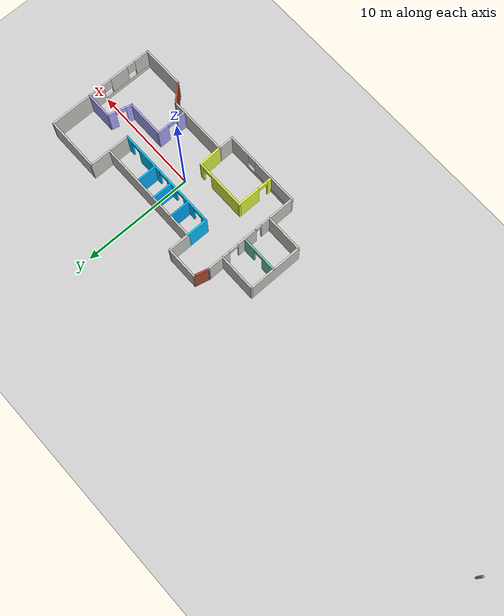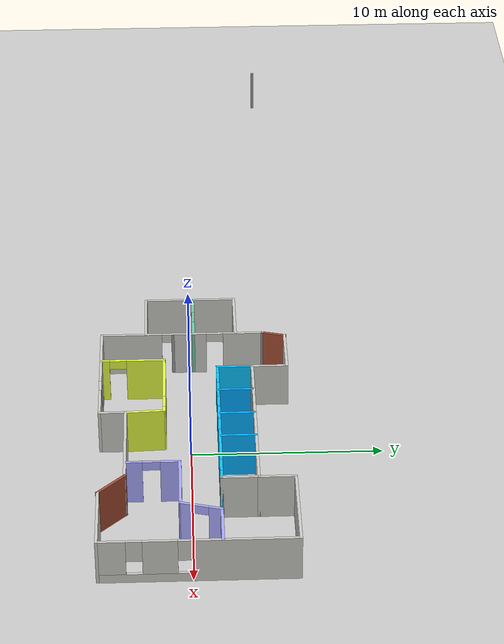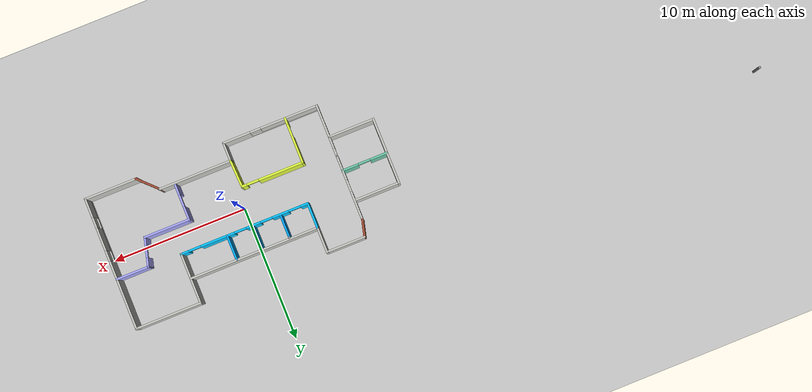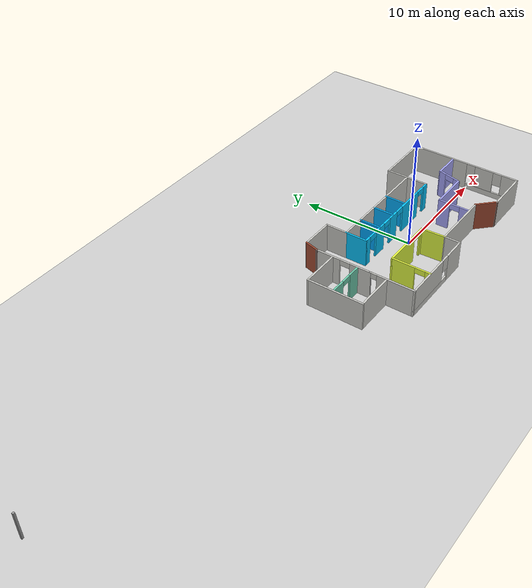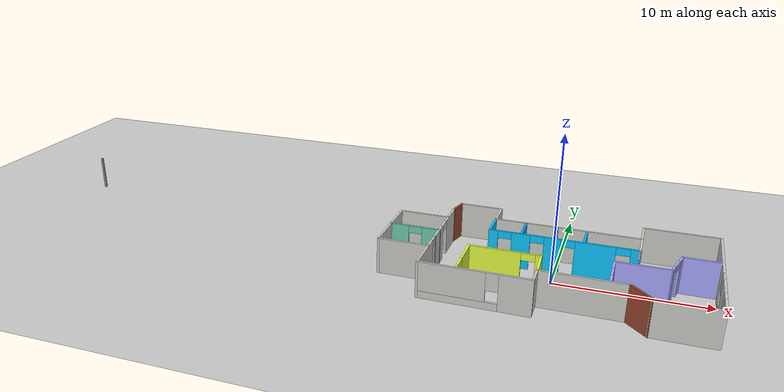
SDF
<sdf version="1.6">
 <world name="default">
  <model name="ground_plane">
   <static>1</static>
   <link name="link">
    <collision name="collision">
     <geometry><plane><normal>0 0 1</normal><size>100 100</size></plane></geometry>
     <surface><friction><ode><mu>100</mu><mu2>50</mu2></ode></friction></surface>
    </collision>
    <visual name="visual">
     <cast_shadows>0</cast_shadows>
     <geometry><plane><normal>0 0 1</normal><size>100 100</size></plane></geometry>
     <material>
      <script><uri>file://media/materials/scripts/gazebo.material</uri><name>Gazebo/Grey</name></script>
     </material>
    </visual>
   </link>
  </model>
  <model name="Building">
   <pose>-13.8443 0.24841 0 0 -0 0</pose>
   <link name="Wall_10">
    <collision name="Wall_10_Collision">
     <geometry><box><size>4 0.15 2.5</size></box></geometry>
     <pose>0 0 1.25 0 -0 0</pose>
    </collision>
    <visual name="Wall_10_Visual">
     <pose>0 0 1.25 0 -0 0</pose>
     <geometry><box><size>4 0.15 2.5</size></box></geometry>
     <material>
      <script><uri>file://media/materials/scripts/gazebo.material</uri><name>Gazebo/CeilingTiled</name></script>
      <ambient>1 1 1 1</ambient>
     </material>
     <meta><layer>0</layer></meta>
    </visual>
    <pose>21.9406 -4.91227 0 0 -0 3.14159</pose>
   </link>
   <link name="Wall_11">
    <collision name="Wall_11_Collision">
     <geometry><box><size>2 0.15 2.5</size></box></geometry>
     <pose>0 0 1.25 0 -0 0</pose>
    </collision>
    <visual name="Wall_11_Visual">
     <pose>0 0 1.25 0 -0 0</pose>
     <geometry><box><size>2 0.15 2.5</size></box></geometry>
     <material>
      <script><uri>file://media/materials/scripts/gazebo.material</uri><name>Gazebo/Bricks</name></script>
      <ambient>1 1 1 1</ambient>
     </material>
     <meta><layer>0</layer></meta>
    </visual>
    <pose>19.3615 -4.25819 0 0 -0 2.35619</pose>
   </link>
   <link name="Wall_12">
    <collision name="Wall_12_Collision">
     <geometry><box><size>5.5 0.15 2.5</size></box></geometry>
     <pose>0 0 1.25 0 -0 0</pose>
    </collision>
    <visual name="Wall_12_Visual">
     <pose>0 0 1.25 0 -0 0</pose>
     <geometry><box><size>5.5 0.15 2.5</size></box></geometry>
     <material>
      <script><uri>file://media/materials/scripts/gazebo.material</uri><name>Gazebo/CeilingTiled</name></script>
      <ambient>1 1 1 1</ambient>
     </material>
     <meta><layer>0</layer></meta>
    </visual>
    <pose>16.0324 -3.60412 0 0 -0 3.14159</pose>
   </link>
   <link name="Wall_13">
    <collision name="Wall_13_Collision">
     <geometry><box><size>1.5 0.15 2.5</size></box></geometry>
     <pose>0 0 1.25 0 -0 0</pose>
    </collision>
    <visual name="Wall_13_Visual">
     <pose>0 0 1.25 0 -0 0</pose>
     <geometry><box><size>1.5 0.15 2.5</size></box></geometry>
     <material>
      <script><uri>file://media/materials/scripts/gazebo.material</uri><name>Gazebo/CeilingTiled</name></script>
      <ambient>0.901961 1 0.254902 1</ambient>
     </material>
     <meta><layer>0</layer></meta>
    </visual>
    <pose>13.3574 -4.27912 0 0 0 -1.5708</pose>
   </link>
   <link name="Wall_14">
    <pose>9.80745 -4.95412 0 0 -0 3.14159</pose>
    <visual name="Wall_14_Visual_0">
     <pose>-2.58123 0 1.25 0 -0 0</pose>
     <geometry><box><size>2.08753 0.15 2.5</size></box></geometry>
     <material>
      <script><uri>file://media/materials/scripts/gazebo.material</uri><name>Gazebo/CeilingTiled</name></script>
      <ambient>1 1 1 1</ambient>
     </material>
     <meta><layer>0</layer></meta>
    </visual>
    <collision name="Wall_14_Collision_0">
     <geometry><box><size>2.08753 0.15 2.5</size></box></geometry>
     <pose>-2.58123 0 1.25 0 -0 0</pose>
    </collision>
    <visual name="Wall_14_Visual_1">
     <pose>1.04377 0 0.25 0 -0 0</pose>
     <geometry><box><size>5.16247 0.15 0.5</size></box></geometry>
     <material>
      <script><uri>file://media/materials/scripts/gazebo.material</uri><name>Gazebo/CeilingTiled</name></script>
      <ambient>1 1 1 1</ambient>
     </material>
     <meta><layer>0</layer></meta>
    </visual>
    <collision name="Wall_14_Collision_1">
     <geometry><box><size>5.16247 0.15 0.5</size></box></geometry>
     <pose>1.04377 0 0.25 0 -0 0</pose>
    </collision>
    <visual name="Wall_14_Visual_2">
     <pose>1.44377 0 1.5 0 -0 0</pose>
     <geometry><box><size>4.36247 0.15 2</size></box></geometry>
     <material>
      <script><uri>file://media/materials/scripts/gazebo.material</uri><name>Gazebo/CeilingTiled</name></script>
      <ambient>1 1 1 1</ambient>
     </material>
     <meta><layer>0</layer></meta>
    </visual>
    <collision name="Wall_14_Collision_2">
     <geometry><box><size>4.36247 0.15 2</size></box></geometry>
     <pose>1.44377 0 1.5 0 -0 0</pose>
    </collision>
    <visual name="Wall_14_Visual_3">
     <pose>-1.13747 0 1.9 0 -0 0</pose>
     <geometry><box><size>0.8 0.15 1.2</size></box></geometry>
     <material>
      <script><uri>file://media/materials/scripts/gazebo.material</uri><name>Gazebo/CeilingTiled</name></script>
      <ambient>1 1 1 1</ambient>
     </material>
     <meta><layer>0</layer></meta>
    </visual>
    <collision name="Wall_14_Collision_3">
     <geometry><box><size>0.8 0.15 1.2</size></box></geometry>
     <pose>-1.13747 0 1.9 0 -0 0</pose>
    </collision>
   </link>
   <link name="Wall_15">
    <pose>6.25745 -3.02912 0 0 -0 1.5708</pose>
    <visual name="Wall_15_Visual_0">
     <pose>-0.337699 0 1.25 0 -0 0</pose>
     <geometry><box><size>3.3246 0.15 2.5</size></box></geometry>
     <material>
      <script><uri>file://media/materials/scripts/gazebo.material</uri><name>Gazebo/CeilingTiled</name></script>
      <ambient>0.435294 0.796078 0.67451 1</ambient>
     </material>
     <meta><layer>0</layer></meta>
    </visual>
    <collision name="Wall_15_Collision_0">
     <geometry><box><size>3.3246 0.15 2.5</size></box></geometry>
     <pose>-0.337699 0 1.25 0 -0 0</pose>
    </collision>
    <visual name="Wall_15_Visual_1">
     <pose>1.6623 0 2.25 0 -0 0</pose>
     <geometry><box><size>0.675399 0.15 0.5</size></box></geometry>
     <material>
      <script><uri>file://media/materials/scripts/gazebo.material</uri><name>Gazebo/CeilingTiled</name></script>
      <ambient>0.435294 0.796078 0.67451 1</ambient>
     </material>
     <meta><layer>0</layer></meta>
    </visual>
    <collision name="Wall_15_Collision_1">
     <geometry><box><size>0.675399 0.15 0.5</size></box></geometry>
     <pose>1.6623 0 2.25 0 -0 0</pose>
    </collision>
   </link>
   <link name="Wall_19">
    <collision name="Wall_19_Collision">
     <geometry><box><size>0.15 0.15 2.5</size></box></geometry>
     <pose>0 0 1.25 0 -0 0</pose>
    </collision>
    <visual name="Wall_19_Visual">
     <pose>0 0 1.25 0 -0 0</pose>
     <geometry><box><size>0.15 0.15 2.5</size></box></geometry>
     <material>
      <script><uri>file://media/materials/scripts/gazebo.material</uri><name>Gazebo/Grey</name></script>
      <ambient>1 1 1 1</ambient>
     </material>
     <meta><layer>0</layer></meta>
    </visual>
    <pose>6.25745 3.74588 0 0 -0 0</pose>
   </link>
   <link name="Wall_24">
    <collision name="Wall_24_Collision">
     <geometry><box><size>0.15 0.15 2.5</size></box></geometry>
     <pose>0 0 1.25 0 -0 0</pose>
    </collision>
    <visual name="Wall_24_Visual">
     <pose>0 0 1.25 0 -0 0</pose>
     <geometry><box><size>0.15 0.15 2.5</size></box></geometry>
     <material>
      <script><uri>file://media/materials/scripts/gazebo.material</uri><name>Gazebo/Grey</name></script>
      <ambient>1 1 1 1</ambient>
     </material>
     <meta><layer>0</layer></meta>
    </visual>
    <pose>-23.8656 4.2525 0 0 -0 0</pose>
   </link>
   <link name="Wall_26">
    <collision name="Wall_26_Collision">
     <geometry><box><size>3 0.15 2.5</size></box></geometry>
     <pose>0 0 1.25 0 -0 0</pose>
    </collision>
    <visual name="Wall_26_Visual">
     <pose>0 0 1.25 0 -0 0</pose>
     <geometry><box><size>3 0.15 2.5</size></box></geometry>
     <material>
      <script><uri>file://media/materials/scripts/gazebo.material</uri><name>Gazebo/CeilingTiled</name></script>
      <ambient>0.435294 0.796078 0.67451 1</ambient>
     </material>
     <meta><layer>0</layer></meta>
    </visual>
    <pose>7.99059 4.93773 0 0 -0 3.14159</pose>
   </link>
   <link name="Wall_27">
    <collision name="Wall_27_Collision">
     <geometry><box><size>1.38104 0.15 2.5</size></box></geometry>
     <pose>0 0 1.25 0 -0 0</pose>
    </collision>
    <visual name="Wall_27_Visual">
     <pose>0 0 1.25 0 -0 0</pose>
     <geometry><box><size>1.38104 0.15 2.5</size></box></geometry>
     <material>
      <script><uri>file://media/materials/scripts/gazebo.material</uri><name>Gazebo/Bricks</name></script>
      <ambient>0.435294 0.796078 0.67451 1</ambient>
     </material>
     <meta><layer>0</layer></meta>
    </visual>
    <pose>6.41152 4.34181 0 0 0 -1.8238</pose>
   </link>
   <link name="Wall_28">
    <collision name="Wall_28_Collision">
     <geometry><box><size>0.16 0.15 2.5</size></box></geometry>
     <pose>0 0 1.25 0 -0 0</pose>
    </collision>
    <visual name="Wall_28_Visual">
     <pose>0 0 1.25 0 -0 0</pose>
     <geometry><box><size>0.16 0.15 2.5</size></box></geometry>
     <material>
      <script><uri>file://media/materials/scripts/gazebo.material</uri><name>Gazebo/Grey</name></script>
      <ambient>1 1 1 1</ambient>
     </material>
     <meta><layer>0</layer></meta>
    </visual>
    <pose>6.26245 3.74588 0 0 -0 0</pose>
   </link>
   <link name="Wall_3">
    <collision name="Wall_3_Collision">
     <geometry><box><size>2.00019 0.15 2.5</size></box></geometry>
     <pose>0 0 1.25 0 -0 0</pose>
    </collision>
    <visual name="Wall_3_Visual">
     <pose>0 0 1.25 0 -0 0</pose>
     <geometry><box><size>2.00019 0.15 2.5</size></box></geometry>
     <material>
      <script><uri>file://media/materials/scripts/gazebo.material</uri><name>Gazebo/CeilingTiled</name></script>
      <ambient>1 1 1 1</ambient>
     </material>
     <meta><layer>0</layer></meta>
    </visual>
    <pose>9.41559 4.01273 0 0 0 -1.5708</pose>
   </link>
   <link name="Wall_30">
    <pose>6.25745 1.32088 0 0 0 -1.5708</pose>
    <visual name="Wall_30_Visual_0">
     <pose>-1.39411 0 1.25 0 -0 0</pose>
     <geometry><box><size>2.21177 0.15 2.5</size></box></geometry>
     <material>
      <script><uri>file://media/materials/scripts/gazebo.material</uri><name>Gazebo/CeilingTiled</name></script>
      <ambient>0.435294 0.796078 0.67451 1</ambient>
     </material>
     <meta><layer>0</layer></meta>
    </visual>
    <collision name="Wall_30_Collision_0">
     <geometry><box><size>2.21177 0.15 2.5</size></box></geometry>
     <pose>-1.39411 0 1.25 0 -0 0</pose>
    </collision>
    <visual name="Wall_30_Visual_1">
     <pose>1.55588 0 1.25 0 -0 0</pose>
     <geometry><box><size>1.88823 0.15 2.5</size></box></geometry>
     <material>
      <script><uri>file://media/materials/scripts/gazebo.material</uri><name>Gazebo/CeilingTiled</name></script>
      <ambient>0.435294 0.796078 0.67451 1</ambient>
     </material>
     <meta><layer>0</layer></meta>
    </visual>
    <collision name="Wall_30_Collision_1">
     <geometry><box><size>1.88823 0.15 2.5</size></box></geometry>
     <pose>1.55588 0 1.25 0 -0 0</pose>
    </collision>
    <visual name="Wall_30_Visual_2">
     <pose>0.16177 0 2.25 0 -0 0</pose>
     <geometry><box><size>0.9 0.15 0.5</size></box></geometry>
     <material>
      <script><uri>file://media/materials/scripts/gazebo.material</uri><name>Gazebo/CeilingTiled</name></script>
      <ambient>0.435294 0.796078 0.67451 1</ambient>
     </material>
     <meta><layer>0</layer></meta>
    </visual>
    <collision name="Wall_30_Collision_2">
     <geometry><box><size>0.9 0.15 0.5</size></box></geometry>
     <pose>0.16177 0 2.25 0 -0 0</pose>
    </collision>
   </link>
   <link name="Wall_31">
    <collision name="Wall_31_Collision">
     <geometry><box><size>0.15 0.15 2.5</size></box></geometry>
     <pose>0 0 1.25 0 -0 0</pose>
    </collision>
    <visual name="Wall_31_Visual">
     <pose>0 0 1.25 0 -0 0</pose>
     <geometry><box><size>0.15 0.15 2.5</size></box></geometry>
     <material>
      <script><uri>file://media/materials/scripts/gazebo.material</uri><name>Gazebo/Grey</name></script>
      <ambient>1 1 1 1</ambient>
     </material>
     <meta><layer>0</layer></meta>
    </visual>
    <pose>6.25745 -1.10412 0 0 -0 0</pose>
   </link>
   <link name="Wall_4">
    <collision name="Wall_4_Collision">
     <geometry><box><size>9.75 0.15 2.5</size></box></geometry>
     <pose>0 0 1.25 0 -0 0</pose>
    </collision>
    <visual name="Wall_4_Visual">
     <pose>0 0 1.25 0 -0 0</pose>
     <geometry><box><size>9.75 0.15 2.5</size></box></geometry>
     <material>
      <script><uri>file://media/materials/scripts/gazebo.material</uri><name>Gazebo/CeilingTiled</name></script>
      <ambient>0.0196078 0.690196 1 1</ambient>
     </material>
     <meta><layer>0</layer></meta>
    </visual>
    <pose>14.2156 3.08773 0 0 -0 0</pose>
   </link>
   <link name="Wall_40">
    <collision name="Wall_40_Collision">
     <geometry><box><size>3.5 0.15 2.5</size></box></geometry>
     <pose>0 0 1.25 0 -0 0</pose>
    </collision>
    <visual name="Wall_40_Visual">
     <pose>0 0 1.25 0 -0 0</pose>
     <geometry><box><size>3.5 0.15 2.5</size></box></geometry>
     <material>
      <script><uri>file://media/materials/scripts/gazebo.material</uri><name>Gazebo/CeilingTiled</name></script>
      <ambient>0.435294 0.796078 0.67451 1</ambient>
     </material>
     <meta><layer>0</layer></meta>
    </visual>
    <pose>4.56509 2.27847 0 0 -0 3.14159</pose>
   </link>
   <link name="Wall_41">
    <collision name="Wall_41_Collision">
     <geometry><box><size>5 0.15 2.5</size></box></geometry>
     <pose>0 0 1.25 0 -0 0</pose>
    </collision>
    <visual name="Wall_41_Visual">
     <pose>0 0 1.25 0 -0 0</pose>
     <geometry><box><size>5 0.15 2.5</size></box></geometry>
     <material>
      <script><uri>file://media/materials/scripts/gazebo.material</uri><name>Gazebo/CeilingTiled</name></script>
      <ambient>1 1 1 1</ambient>
     </material>
     <meta><layer>0</layer></meta>
    </visual>
    <pose>2.89009 -0.146525 0 0 0 -1.5708</pose>
   </link>
   <link name="Wall_42">
    <collision name="Wall_42_Collision">
     <geometry><box><size>3.5 0.15 2.5</size></box></geometry>
     <pose>0 0 1.25 0 -0 0</pose>
    </collision>
    <visual name="Wall_42_Visual">
     <pose>0 0 1.25 0 -0 0</pose>
     <geometry><box><size>3.5 0.15 2.5</size></box></geometry>
     <material>
      <script><uri>file://media/materials/scripts/gazebo.material</uri><name>Gazebo/CeilingTiled</name></script>
      <ambient>0.435294 0.796078 0.67451 1</ambient>
     </material>
     <meta><layer>0</layer></meta>
    </visual>
    <pose>4.56509 -2.57152 0 0 -0 0</pose>
   </link>
   <link name="Wall_44">
    <pose>4.59198 0.004767 0 0 -0 0</pose>
    <visual name="Wall_44_Visual_0">
     <pose>-1.08923 0 1.25 0 -0 0</pose>
     <geometry><box><size>1.32154 0.15 2.5</size></box></geometry>
     <material>
      <script><uri>file://media/materials/scripts/gazebo.material</uri><name>Gazebo/Grey</name></script>
      <ambient>0.435294 0.796078 0.67451 1</ambient>
     </material>
     <meta><layer>0</layer></meta>
    </visual>
    <collision name="Wall_44_Collision_0">
     <geometry><box><size>1.32154 0.15 2.5</size></box></geometry>
     <pose>-1.08923 0 1.25 0 -0 0</pose>
    </collision>
    <visual name="Wall_44_Visual_1">
     <pose>1.11077 0 1.25 0 -0 0</pose>
     <geometry><box><size>1.27846 0.15 2.5</size></box></geometry>
     <material>
      <script><uri>file://media/materials/scripts/gazebo.material</uri><name>Gazebo/Grey</name></script>
      <ambient>0.435294 0.796078 0.67451 1</ambient>
     </material>
     <meta><layer>0</layer></meta>
    </visual>
    <collision name="Wall_44_Collision_1">
     <geometry><box><size>1.27846 0.15 2.5</size></box></geometry>
     <pose>1.11077 0 1.25 0 -0 0</pose>
    </collision>
    <visual name="Wall_44_Visual_2">
     <pose>0.021536 0 2.25 0 -0 0</pose>
     <geometry><box><size>0.9 0.15 0.5</size></box></geometry>
     <material>
      <script><uri>file://media/materials/scripts/gazebo.material</uri><name>Gazebo/Grey</name></script>
      <ambient>0.435294 0.796078 0.67451 1</ambient>
     </material>
     <meta><layer>0</layer></meta>
    </visual>
    <collision name="Wall_44_Collision_2">
     <geometry><box><size>0.9 0.15 0.5</size></box></geometry>
     <pose>0.021536 0 2.25 0 -0 0</pose>
    </collision>
   </link>
   <link name="Wall_46">
    <collision name="Wall_46_Collision">
     <geometry><box><size>2 0.15 2.5</size></box></geometry>
     <pose>0 0 1.25 0 -0 0</pose>
    </collision>
    <visual name="Wall_46_Visual">
     <pose>0 0 1.25 0 -0 0</pose>
     <geometry><box><size>2 0.15 2.5</size></box></geometry>
     <material>
      <script><uri>file://media/materials/scripts/gazebo.material</uri><name>Gazebo/Grey</name></script>
      <ambient>0.0313726 0.776471 1 1</ambient>
     </material>
     <meta><layer>0</layer></meta>
    </visual>
    <pose>9.41559 2.16273 0 0 0 -1.5708</pose>
   </link>
   <link name="Wall_47">
    <pose>14.2156 1.23773 0 0 -0 0</pose>
    <visual name="Wall_47_Visual_0">
     <pose>-4.56019 0 1.25 0 -0 0</pose>
     <geometry><box><size>0.629619 0.15 2.5</size></box></geometry>
     <material>
      <script><uri>file://media/materials/scripts/gazebo.material</uri><name>Gazebo/Grey</name></script>
      <ambient>0.0313726 0.776471 1 1</ambient>
     </material>
     <meta><layer>0</layer></meta>
    </visual>
    <collision name="Wall_47_Collision_0">
     <geometry><box><size>0.629619 0.15 2.5</size></box></geometry>
     <pose>-4.56019 0 1.25 0 -0 0</pose>
    </collision>
    <visual name="Wall_47_Visual_1">
     <pose>-2.72849 0 1.25 0 -0 0</pose>
     <geometry><box><size>1.23379 0.15 2.5</size></box></geometry>
     <material>
      <script><uri>file://media/materials/scripts/gazebo.material</uri><name>Gazebo/Grey</name></script>
      <ambient>0.0313726 0.776471 1 1</ambient>
     </material>
     <meta><layer>0</layer></meta>
    </visual>
    <collision name="Wall_47_Collision_1">
     <geometry><box><size>1.23379 0.15 2.5</size></box></geometry>
     <pose>-2.72849 0 1.25 0 -0 0</pose>
    </collision>
    <visual name="Wall_47_Visual_2">
     <pose>-0.673405 0 1.25 0 -0 0</pose>
     <geometry><box><size>1.07638 0.15 2.5</size></box></geometry>
     <material>
      <script><uri>file://media/materials/scripts/gazebo.material</uri><name>Gazebo/Grey</name></script>
      <ambient>0.0313726 0.776471 1 1</ambient>
     </material>
     <meta><layer>0</layer></meta>
    </visual>
    <collision name="Wall_47_Collision_2">
     <geometry><box><size>1.07638 0.15 2.5</size></box></geometry>
     <pose>-0.673405 0 1.25 0 -0 0</pose>
    </collision>
    <visual name="Wall_47_Visual_3">
     <pose>2.0463 0 1.25 0 -0 0</pose>
     <geometry><box><size>2.56303 0.15 2.5</size></box></geometry>
     <material>
      <script><uri>file://media/materials/scripts/gazebo.material</uri><name>Gazebo/Grey</name></script>
      <ambient>0.0313726 0.776471 1 1</ambient>
     </material>
     <meta><layer>0</layer></meta>
    </visual>
    <collision name="Wall_47_Collision_3">
     <geometry><box><size>2.56303 0.15 2.5</size></box></geometry>
     <pose>2.0463 0 1.25 0 -0 0</pose>
    </collision>
    <visual name="Wall_47_Visual_4">
     <pose>4.55141 0 1.25 0 -0 0</pose>
     <geometry><box><size>0.647184 0.15 2.5</size></box></geometry>
     <material>
      <script><uri>file://media/materials/scripts/gazebo.material</uri><name>Gazebo/Grey</name></script>
      <ambient>0.0313726 0.776471 1 1</ambient>
     </material>
     <meta><layer>0</layer></meta>
    </visual>
    <collision name="Wall_47_Collision_4">
     <geometry><box><size>0.647184 0.15 2.5</size></box></geometry>
     <pose>4.55141 0 1.25 0 -0 0</pose>
    </collision>
    <visual name="Wall_47_Visual_5">
     <pose>-3.79538 0 2.25 0 -0 0</pose>
     <geometry><box><size>0.9 0.15 0.5</size></box></geometry>
     <material>
      <script><uri>file://media/materials/scripts/gazebo.material</uri><name>Gazebo/Grey</name></script>
      <ambient>0.0313726 0.776471 1 1</ambient>
     </material>
     <meta><layer>0</layer></meta>
    </visual>
    <collision name="Wall_47_Collision_5">
     <geometry><box><size>0.9 0.15 0.5</size></box></geometry>
     <pose>-3.79538 0 2.25 0 -0 0</pose>
    </collision>
    <visual name="Wall_47_Visual_6">
     <pose>-1.66159 0 2.25 0 -0 0</pose>
     <geometry><box><size>0.9 0.15 0.5</size></box></geometry>
     <material>
      <script><uri>file://media/materials/scripts/gazebo.material</uri><name>Gazebo/Grey</name></script>
      <ambient>0.0313726 0.776471 1 1</ambient>
     </material>
     <meta><layer>0</layer></meta>
    </visual>
    <collision name="Wall_47_Collision_6">
     <geometry><box><size>0.9 0.15 0.5</size></box></geometry>
     <pose>-1.66159 0 2.25 0 -0 0</pose>
    </collision>
    <visual name="Wall_47_Visual_7">
     <pose>0.314784 0 2.25 0 -0 0</pose>
     <geometry><box><size>0.9 0.15 0.5</size></box></geometry>
     <material>
      <script><uri>file://media/materials/scripts/gazebo.material</uri><name>Gazebo/Grey</name></script>
      <ambient>0.0313726 0.776471 1 1</ambient>
     </material>
     <meta><layer>0</layer></meta>
    </visual>
    <collision name="Wall_47_Collision_7">
     <geometry><box><size>0.9 0.15 0.5</size></box></geometry>
     <pose>0.314784 0 2.25 0 -0 0</pose>
    </collision>
    <visual name="Wall_47_Visual_8">
     <pose>3.77782 0 2.25 0 -0 0</pose>
     <geometry><box><size>0.9 0.15 0.5</size></box></geometry>
     <material>
      <script><uri>file://media/materials/scripts/gazebo.material</uri><name>Gazebo/Grey</name></script>
      <ambient>0.0313726 0.776471 1 1</ambient>
     </material>
     <meta><layer>0</layer></meta>
    </visual>
    <collision name="Wall_47_Collision_8">
     <geometry><box><size>0.9 0.15 0.5</size></box></geometry>
     <pose>3.77782 0 2.25 0 -0 0</pose>
    </collision>
   </link>
   <link name="Wall_48">
    <collision name="Wall_48_Collision">
     <geometry><box><size>2 0.15 2.5</size></box></geometry>
     <pose>0 0 1.25 0 -0 0</pose>
    </collision>
    <visual name="Wall_48_Visual">
     <pose>0 0 1.25 0 -0 0</pose>
     <geometry><box><size>2 0.15 2.5</size></box></geometry>
     <material>
      <script><uri>file://media/materials/scripts/gazebo.material</uri><name>Gazebo/CeilingTiled</name></script>
      <ambient>0.0470588 0.745098 1 1</ambient>
     </material>
     <meta><layer>0</layer></meta>
    </visual>
    <pose>19.0156 2.16273 0 0 -0 1.5708</pose>
   </link>
   <link name="Wall_52">
    <collision name="Wall_52_Collision">
     <geometry><box><size>1.8816 0.15 2.5</size></box></geometry>
     <pose>0 0 1.25 0 -0 0</pose>
    </collision>
    <visual name="Wall_52_Visual">
     <pose>0 0 1.25 0 -0 0</pose>
     <geometry><box><size>1.8816 0.15 2.5</size></box></geometry>
     <material>
      <script><uri>file://media/materials/scripts/gazebo.material</uri><name>Gazebo/Grey</name></script>
      <ambient>0 0.666667 1 1</ambient>
     </material>
     <meta><layer>0</layer></meta>
    </visual>
    <pose>11.5046 2.1473 0 0 -0 1.5708</pose>
   </link>
   <link name="Wall_53">
    <collision name="Wall_53_Collision">
     <geometry><box><size>0.15 0.15 2.5</size></box></geometry>
     <pose>0 0 1.25 0 -0 0</pose>
    </collision>
    <visual name="Wall_53_Visual">
     <pose>0 0 1.25 0 -0 0</pose>
     <geometry><box><size>0.15 0.15 2.5</size></box></geometry>
     <material>
      <script><uri>file://media/materials/scripts/gazebo.material</uri><name>Gazebo/Grey</name></script>
      <ambient>1 1 1 1</ambient>
     </material>
     <meta><layer>0</layer></meta>
    </visual>
    <pose>11.5046 3.01306 0 0 -0 0</pose>
   </link>
   <link name="Wall_54">
    <collision name="Wall_54_Collision">
     <geometry><box><size>0.15 0.15 2.5</size></box></geometry>
     <pose>0 0 1.25 0 -0 0</pose>
    </collision>
    <visual name="Wall_54_Visual">
     <pose>0 0 1.25 0 -0 0</pose>
     <geometry><box><size>0.15 0.15 2.5</size></box></geometry>
     <material>
      <script><uri>file://media/materials/scripts/gazebo.material</uri><name>Gazebo/Grey</name></script>
      <ambient>1 1 1 1</ambient>
     </material>
     <meta><layer>0</layer></meta>
    </visual>
    <pose>11.5046 3.01306 0 0 -0 0</pose>
   </link>
   <link name="Wall_56">
    <collision name="Wall_56_Collision">
     <geometry><box><size>1.86438 0.15 2.5</size></box></geometry>
     <pose>0 0 1.25 0 -0 0</pose>
    </collision>
    <visual name="Wall_56_Visual">
     <pose>0 0 1.25 0 -0 0</pose>
     <geometry><box><size>1.86438 0.15 2.5</size></box></geometry>
     <material>
      <script><uri>file://media/materials/scripts/gazebo.material</uri><name>Gazebo/Grey</name></script>
      <ambient>0.0196078 0.690196 1 1</ambient>
     </material>
     <meta><layer>0</layer></meta>
    </visual>
    <pose>13.5859 2.19102 0 0 0 -1.5708</pose>
   </link>
   <link name="Wall_58">
    <collision name="Wall_58_Collision">
     <geometry><box><size>1.89936 0.15 2.5</size></box></geometry>
     <pose>0 0 1.25 0 -0 0</pose>
    </collision>
    <visual name="Wall_58_Visual">
     <pose>0 0 1.25 0 -0 0</pose>
     <geometry><box><size>1.89936 0.15 2.5</size></box></geometry>
     <material>
      <script><uri>file://media/materials/scripts/gazebo.material</uri><name>Gazebo/Grey</name></script>
      <ambient>0.0196078 0.690196 1 1</ambient>
     </material>
     <meta><layer>0</layer></meta>
    </visual>
    <pose>15.5273 2.19102 0 0 0 -1.5708</pose>
   </link>
   <link name="Wall_60">
    <collision name="Wall_60_Collision">
     <geometry><box><size>2.5 0.15 2.5</size></box></geometry>
     <pose>0 0 1.25 0 -0 0</pose>
    </collision>
    <visual name="Wall_60_Visual">
     <pose>0 0 1.25 0 -0 0</pose>
     <geometry><box><size>2.5 0.15 2.5</size></box></geometry>
     <material>
      <script><uri>file://media/materials/scripts/gazebo.material</uri><name>Gazebo/Grey</name></script>
      <ambient>0.666667 0.666667 1 1</ambient>
     </material>
     <meta><layer>0</layer></meta>
    </visual>
    <pose>22.6776 1.19409 0 0 -0 3.14159</pose>
   </link>
   <link name="Wall_61">
    <pose>21.2308 0.179869 0 0 0 -1.8326</pose>
    <visual name="Wall_61_Visual_0">
     <pose>-0.761229 0 1.25 0 -0 0</pose>
     <geometry><box><size>0.727543 0.15 2.5</size></box></geometry>
     <material>
      <script><uri>file://media/materials/scripts/gazebo.material</uri><name>Gazebo/Grey</name></script>
      <ambient>0.666667 0.666667 1 1</ambient>
     </material>
     <meta><layer>0</layer></meta>
    </visual>
    <collision name="Wall_61_Collision_0">
     <geometry><box><size>0.727543 0.15 2.5</size></box></geometry>
     <pose>-0.761229 0 1.25 0 -0 0</pose>
    </collision>
    <visual name="Wall_61_Visual_1">
     <pose>0.813771 0 1.25 0 -0 0</pose>
     <geometry><box><size>0.622457 0.15 2.5</size></box></geometry>
     <material>
      <script><uri>file://media/materials/scripts/gazebo.material</uri><name>Gazebo/Grey</name></script>
      <ambient>0.666667 0.666667 1 1</ambient>
     </material>
     <meta><layer>0</layer></meta>
    </visual>
    <collision name="Wall_61_Collision_1">
     <geometry><box><size>0.622457 0.15 2.5</size></box></geometry>
     <pose>0.813771 0 1.25 0 -0 0</pose>
    </collision>
    <visual name="Wall_61_Visual_2">
     <pose>0.052543 0 2.25 0 -0 0</pose>
     <geometry><box><size>0.9 0.15 0.5</size></box></geometry>
     <material>
      <script><uri>file://media/materials/scripts/gazebo.material</uri><name>Gazebo/Grey</name></script>
      <ambient>0.666667 0.666667 1 1</ambient>
     </material>
     <meta><layer>0</layer></meta>
    </visual>
    <collision name="Wall_61_Collision_2">
     <geometry><box><size>0.9 0.15 0.5</size></box></geometry>
     <pose>0.052543 0 2.25 0 -0 0</pose>
    </collision>
   </link>
   <link name="Wall_62">
    <collision name="Wall_62_Collision">
     <geometry><box><size>3.5 0.15 2.5</size></box></geometry>
     <pose>0 0 1.25 0 -0 0</pose>
    </collision>
    <visual name="Wall_62_Visual">
     <pose>0 0 1.25 0 -0 0</pose>
     <geometry><box><size>3.5 0.15 2.5</size></box></geometry>
     <material>
      <script><uri>file://media/materials/scripts/gazebo.material</uri><name>Gazebo/Grey</name></script>
      <ambient>0.666667 0.666667 1 1</ambient>
     </material>
     <meta><layer>0</layer></meta>
    </visual>
    <pose>19.2841 -0.834353 0 0 -0 3.14159</pose>
   </link>
   <link name="Wall_63">
    <pose>17.6088 -2.1638 0 0 0 -1.57096</pose>
    <visual name="Wall_63_Visual_0">
     <pose>-0.874701 0 1.25 0 -0 0</pose>
     <geometry><box><size>1.05971 0.15 2.5</size></box></geometry>
     <material>
      <script><uri>file://media/materials/scripts/gazebo.material</uri><name>Gazebo/Grey</name></script>
      <ambient>0.666667 0.666667 1 1</ambient>
     </material>
     <meta><layer>0</layer></meta>
    </visual>
    <collision name="Wall_63_Collision_0">
     <geometry><box><size>1.05971 0.15 2.5</size></box></geometry>
     <pose>-0.874701 0 1.25 0 -0 0</pose>
    </collision>
    <visual name="Wall_63_Visual_1">
     <pose>0.979857 0 1.25 0 -0 0</pose>
     <geometry><box><size>0.849402 0.15 2.5</size></box></geometry>
     <material>
      <script><uri>file://media/materials/scripts/gazebo.material</uri><name>Gazebo/Grey</name></script>
      <ambient>0.666667 0.666667 1 1</ambient>
     </material>
     <meta><layer>0</layer></meta>
    </visual>
    <collision name="Wall_63_Collision_1">
     <geometry><box><size>0.849402 0.15 2.5</size></box></geometry>
     <pose>0.979857 0 1.25 0 -0 0</pose>
    </collision>
    <visual name="Wall_63_Visual_2">
     <pose>0.105156 0 2.25 0 -0 0</pose>
     <geometry><box><size>0.9 0.15 0.5</size></box></geometry>
     <material>
      <script><uri>file://media/materials/scripts/gazebo.material</uri><name>Gazebo/Grey</name></script>
      <ambient>0.666667 0.666667 1 1</ambient>
     </material>
     <meta><layer>0</layer></meta>
    </visual>
    <collision name="Wall_63_Collision_2">
     <geometry><box><size>0.9 0.15 0.5</size></box></geometry>
     <pose>0.105156 0 2.25 0 -0 0</pose>
    </collision>
   </link>
   <link name="Wall_65">
    <pose>8.67121 -3.26992 0 0 -0 1.5708</pose>
    <visual name="Wall_65_Visual_0">
     <pose>-1.4915 0 1.25 0 -0 0</pose>
     <geometry><box><size>0.516993 0.15 2.5</size></box></geometry>
     <material>
      <script><uri>file://media/materials/scripts/gazebo.material</uri><name>Gazebo/Grey</name></script>
      <ambient>0.901961 1 0.254902 1</ambient>
     </material>
     <meta><layer>0</layer></meta>
    </visual>
    <collision name="Wall_65_Collision_0">
     <geometry><box><size>0.516993 0.15 2.5</size></box></geometry>
     <pose>-1.4915 0 1.25 0 -0 0</pose>
    </collision>
    <visual name="Wall_65_Visual_1">
     <pose>0.708497 0 1.25 0 -0 0</pose>
     <geometry><box><size>2.08301 0.15 2.5</size></box></geometry>
     <material>
      <script><uri>file://media/materials/scripts/gazebo.material</uri><name>Gazebo/Grey</name></script>
      <ambient>0.901961 1 0.254902 1</ambient>
     </material>
     <meta><layer>0</layer></meta>
    </visual>
    <collision name="Wall_65_Collision_1">
     <geometry><box><size>2.08301 0.15 2.5</size></box></geometry>
     <pose>0.708497 0 1.25 0 -0 0</pose>
    </collision>
    <visual name="Wall_65_Visual_2">
     <pose>-0.783007 0 2.25 0 -0 0</pose>
     <geometry><box><size>0.9 0.15 0.5</size></box></geometry>
     <material>
      <script><uri>file://media/materials/scripts/gazebo.material</uri><name>Gazebo/Grey</name></script>
      <ambient>0.901961 1 0.254902 1</ambient>
     </material>
     <meta><layer>0</layer></meta>
    </visual>
    <collision name="Wall_65_Collision_2">
     <geometry><box><size>0.9 0.15 0.5</size></box></geometry>
     <pose>-0.783007 0 2.25 0 -0 0</pose>
    </collision>
   </link>
   <link name="Wall_66">
    <pose>10.9712 -1.59492 0 0 -0 0</pose>
    <visual name="Wall_66_Visual_0">
     <pose>-0.664828 0 1.25 0 -0 0</pose>
     <geometry><box><size>3.42034 0.15 2.5</size></box></geometry>
     <material>
      <script><uri>file://media/materials/scripts/gazebo.material</uri><name>Gazebo/Grey</name></script>
      <ambient>0.901961 1 0.254902 1</ambient>
     </material>
     <meta><layer>0</layer></meta>
    </visual>
    <collision name="Wall_66_Collision_0">
     <geometry><box><size>3.42034 0.15 2.5</size></box></geometry>
     <pose>-0.664828 0 1.25 0 -0 0</pose>
    </collision>
    <visual name="Wall_66_Visual_1">
     <pose>2.16017 0 1.25 0 -0 0</pose>
     <geometry><box><size>0.429656 0.15 2.5</size></box></geometry>
     <material>
      <script><uri>file://media/materials/scripts/gazebo.material</uri><name>Gazebo/Grey</name></script>
      <ambient>0.901961 1 0.254902 1</ambient>
     </material>
     <meta><layer>0</layer></meta>
    </visual>
    <collision name="Wall_66_Collision_1">
     <geometry><box><size>0.429656 0.15 2.5</size></box></geometry>
     <pose>2.16017 0 1.25 0 -0 0</pose>
    </collision>
    <visual name="Wall_66_Visual_2">
     <pose>1.49534 0 2.25 0 -0 0</pose>
     <geometry><box><size>0.9 0.15 0.5</size></box></geometry>
     <material>
      <script><uri>file://media/materials/scripts/gazebo.material</uri><name>Gazebo/Grey</name></script>
      <ambient>0.901961 1 0.254902 1</ambient>
     </material>
     <meta><layer>0</layer></meta>
    </visual>
    <collision name="Wall_66_Collision_2">
     <geometry><box><size>0.9 0.15 0.5</size></box></geometry>
     <pose>1.49534 0 2.25 0 -0 0</pose>
    </collision>
   </link>
   <link name="Wall_67">
    <collision name="Wall_67_Collision">
     <geometry><box><size>2.16105 0.15 2.5</size></box></geometry>
     <pose>0 0 1.25 0 -0 0</pose>
    </collision>
    <visual name="Wall_67_Visual">
     <pose>0 0 1.25 0 -0 0</pose>
     <geometry><box><size>2.16105 0.15 2.5</size></box></geometry>
     <material>
      <script><uri>file://media/materials/scripts/gazebo.material</uri><name>Gazebo/Grey</name></script>
      <ambient>0.901961 1 0.254902 1</ambient>
     </material>
     <meta><layer>0</layer></meta>
    </visual>
    <pose>13.3143 -2.59952 0 0 0 -1.5279</pose>
   </link>
   <link name="Wall_7">
    <collision name="Wall_7_Collision">
     <geometry><box><size>2 0.15 2.5</size></box></geometry>
     <pose>0 0 1.25 0 -0 0</pose>
    </collision>
    <visual name="Wall_7_Visual">
     <pose>0 0 1.25 0 -0 0</pose>
     <geometry><box><size>2 0.15 2.5</size></box></geometry>
     <material>
      <script><uri>file://media/materials/scripts/gazebo.material</uri><name>Gazebo/CeilingTiled</name></script>
      <ambient>1 1 1 1</ambient>
     </material>
     <meta><layer>0</layer></meta>
    </visual>
    <pose>19.0156 4.01273 0 0 -0 1.5708</pose>
   </link>
   <link name="Wall_8">
    <collision name="Wall_8_Collision">
     <geometry><box><size>5 0.15 2.5</size></box></geometry>
     <pose>0 0 1.25 0 -0 0</pose>
    </collision>
    <visual name="Wall_8_Visual">
     <pose>0 0 1.25 0 -0 0</pose>
     <geometry><box><size>5 0.15 2.5</size></box></geometry>
     <material>
      <script><uri>file://media/materials/scripts/gazebo.material</uri><name>Gazebo/CeilingTiled</name></script>
      <ambient>1 1 1 1</ambient>
     </material>
     <meta><layer>0</layer></meta>
    </visual>
    <pose>21.4406 4.93773 0 0 -0 0</pose>
   </link>
   <link name="Wall_9">
    <pose>23.8656 0.012733 0 0 0 -1.5708</pose>
    <visual name="Wall_9_Visual_0">
     <pose>-2.39869 0 1.25 0 -0 0</pose>
     <geometry><box><size>5.20263 0.15 2.5</size></box></geometry>
     <material>
      <script><uri>file://media/materials/scripts/gazebo.material</uri><name>Gazebo/CeilingTiled</name></script>
      <ambient>1 1 1 1</ambient>
     </material>
     <meta><layer>0</layer></meta>
    </visual>
    <collision name="Wall_9_Collision_0">
     <geometry><box><size>5.20263 0.15 2.5</size></box></geometry>
     <pose>-2.39869 0 1.25 0 -0 0</pose>
    </collision>
    <visual name="Wall_9_Visual_1">
     <pose>2.60131 0 0.25 0 -0 0</pose>
     <geometry><box><size>4.79737 0.15 0.5</size></box></geometry>
     <material>
      <script><uri>file://media/materials/scripts/gazebo.material</uri><name>Gazebo/CeilingTiled</name></script>
      <ambient>1 1 1 1</ambient>
     </material>
     <meta><layer>0</layer></meta>
    </visual>
    <collision name="Wall_9_Collision_1">
     <geometry><box><size>4.79737 0.15 0.5</size></box></geometry>
     <pose>2.60131 0 0.25 0 -0 0</pose>
    </collision>
    <visual name="Wall_9_Visual_2">
     <pose>1.86191 0 1.5 0 -0 0</pose>
     <geometry><box><size>1.71857 0.15 2</size></box></geometry>
     <material>
      <script><uri>file://media/materials/scripts/gazebo.material</uri><name>Gazebo/CeilingTiled</name></script>
      <ambient>1 1 1 1</ambient>
     </material>
     <meta><layer>0</layer></meta>
    </visual>
    <collision name="Wall_9_Collision_2">
     <geometry><box><size>1.71857 0.15 2</size></box></geometry>
     <pose>1.86191 0 1.5 0 -0 0</pose>
    </collision>
    <visual name="Wall_9_Visual_3">
     <pose>4.2606 0 1.5 0 -0 0</pose>
     <geometry><box><size>1.4788 0.15 2</size></box></geometry>
     <material>
      <script><uri>file://media/materials/scripts/gazebo.material</uri><name>Gazebo/CeilingTiled</name></script>
      <ambient>1 1 1 1</ambient>
     </material>
     <meta><layer>0</layer></meta>
    </visual>
    <collision name="Wall_9_Collision_3">
     <geometry><box><size>1.4788 0.15 2</size></box></geometry>
     <pose>4.2606 0 1.5 0 -0 0</pose>
    </collision>
    <visual name="Wall_9_Visual_4">
     <pose>0.602629 0 1.9 0 -0 0</pose>
     <geometry><box><size>0.8 0.15 1.2</size></box></geometry>
     <material>
      <script><uri>file://media/materials/scripts/gazebo.material</uri><name>Gazebo/CeilingTiled</name></script>
      <ambient>1 1 1 1</ambient>
     </material>
     <meta><layer>0</layer></meta>
    </visual>
    <collision name="Wall_9_Collision_4">
     <geometry><box><size>0.8 0.15 1.2</size></box></geometry>
     <pose>0.602629 0 1.9 0 -0 0</pose>
    </collision>
    <visual name="Wall_9_Visual_5">
     <pose>3.1212 0 1.9 0 -0 0</pose>
     <geometry><box><size>0.8 0.15 1.2</size></box></geometry>
     <material>
      <script><uri>file://media/materials/scripts/gazebo.material</uri><name>Gazebo/CeilingTiled</name></script>
      <ambient>1 1 1 1</ambient>
     </material>
     <meta><layer>0</layer></meta>
    </visual>
    <collision name="Wall_9_Collision_5">
     <geometry><box><size>0.8 0.15 1.2</size></box></geometry>
     <pose>3.1212 0 1.9 0 -0 0</pose>
    </collision>
   </link>
   <static>1</static>
  </model>
 </world>
</sdf>
